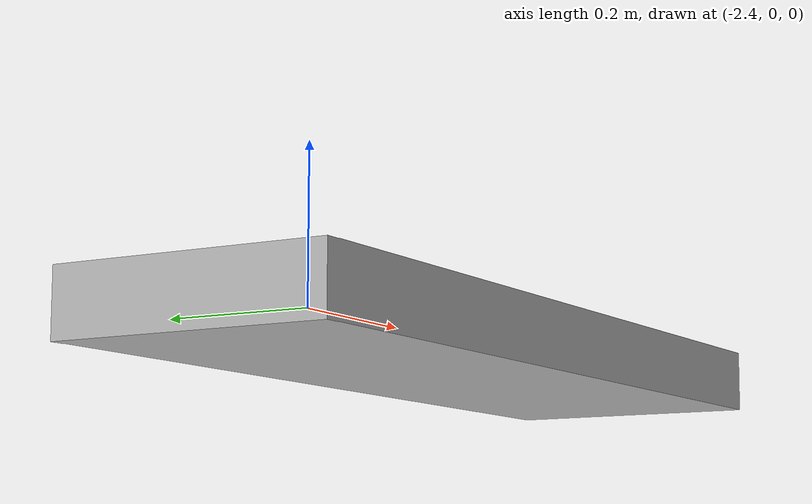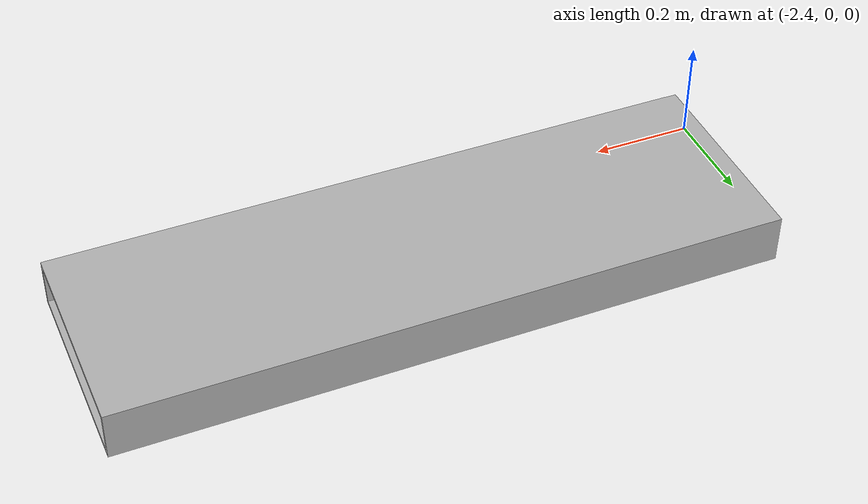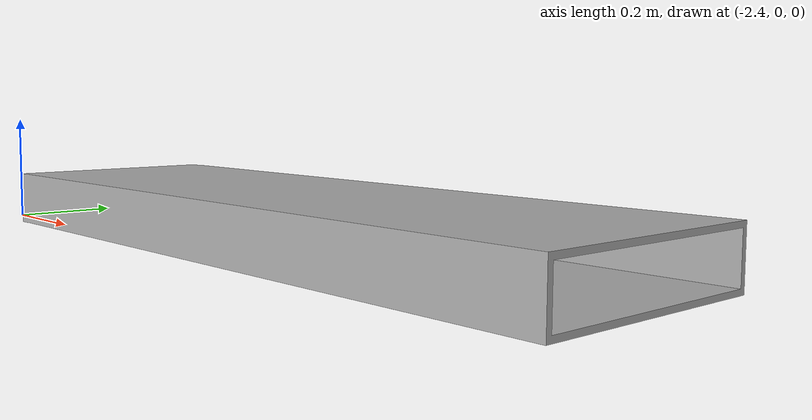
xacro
<?xml version="1.0"?>
<robot name="piston_holder" xmlns:xacro="http://ros.org/wiki/xacro">

  <link name="base_link">
    <inertial>
      <origin xyz="-1.7518168059274533 0.19999999086506662 0.039960891101304415" rpy="0 0 0"/>
      <mass value="105.3838852413642"/>
      <inertia ixx="2.16284" iyy="17.198721" izz="18.99593" ixy="0.0" iyz="0.0" ixz="-0.002517"/>
    </inertial>
    <visual>
      <origin xyz="0 0 0" rpy="0 0 0"/>
      <geometry>
        <mesh filename="package://conveyor_belt/meshes/elements/piston_holder_base_link.stl" scale="0.001 0.001 0.001"/>
      </geometry>
      <material name="silver">
        <color rgba="0.7 0.7 0.7 1.0"/>
      </material>
    </visual>
  </link>

  <gazebo>
    <static>true</static>
  </gazebo>

</robot>
